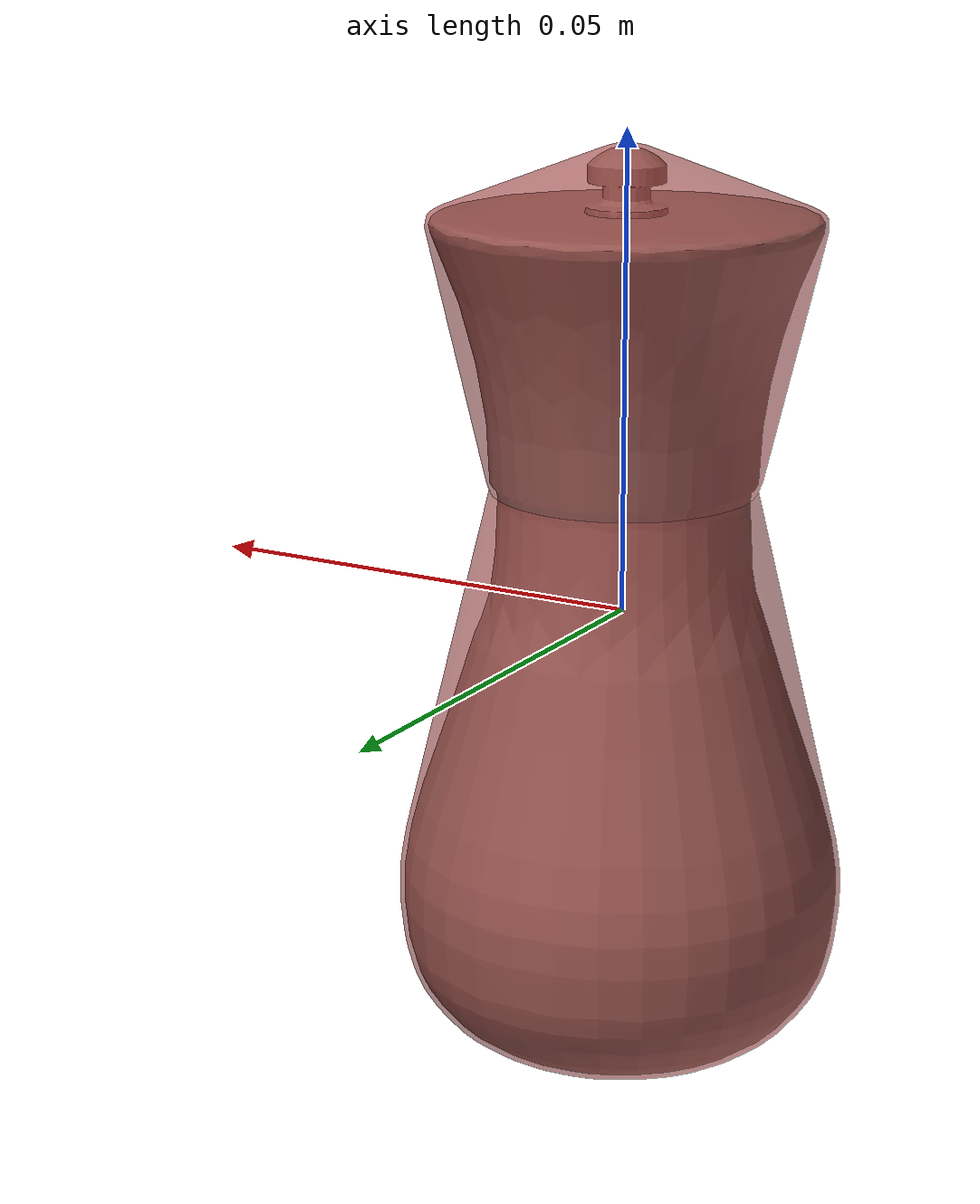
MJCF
<mujoco model="model">
  <option timestep="0.0005" gravity="0.0 0.0 -9.81"/>
  <compiler angle="radian"/>
  <asset>
    <mesh file="visual/PepperShaker004.obj" name="PepperShaker004_vis"/>
    <texture file="visual/T_BC001.png" name="PepperShaker004_material" type="2d"/>
    <material name="PepperShaker004_material" rgba="1 1 1 1.0" texture="PepperShaker004_material" shininess="0.141421377658844" specular="1"/>
    <mesh file="collision/collision_mesh_collision_0.obj" name="PepperShaker004_collision_mesh_0"/>
    <mesh file="collision/collision_mesh_collision_1.obj" name="PepperShaker004_collision_mesh_1"/>
  </asset>
  <default>
    <default class="visual">
      <geom conaffinity="0" contype="0" group="1" type="mesh"/>
    </default>
    <default class="collision">
      <geom group="0" rgba="0.5 0 0 0.5" density="1000.0"/>
    </default>
    <default class="spawn">
      <geom group="0" rgba="1 1 1 0.5" contype="0" conaffinity="0"/>
      <site group="0" rgba="1 1 1 0.5"/>
    </default>
    <default class="region">
      <geom group="1" conaffinity="0" contype="0" rgba="0 1 0 0" mass="0"/>
    </default>
  </default>
  <worldbody>
    <body>
      <body name="object">
        <geom mesh="PepperShaker004_vis" type="mesh" solimp="0.998 0.998 0.001" solref="0.001 1" friction="0.95 0.3 0.1" class="visual" material="PepperShaker004_material"/>
        <geom class="region" name="reg_bbox" type="box" pos="0.0 0.0 4.665000000000918e-06" size="0.02362492 0.02362492 0.048421455"/>
        <geom mesh="PepperShaker004_collision_mesh_0" type="mesh" class="collision"/>
        <geom mesh="PepperShaker004_collision_mesh_1" type="mesh" class="collision"/>
      </body>
    </body>
  </worldbody>
  <actuator/>
</mujoco>
